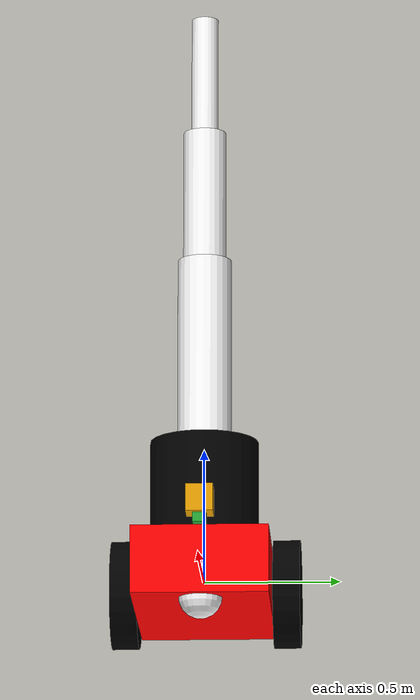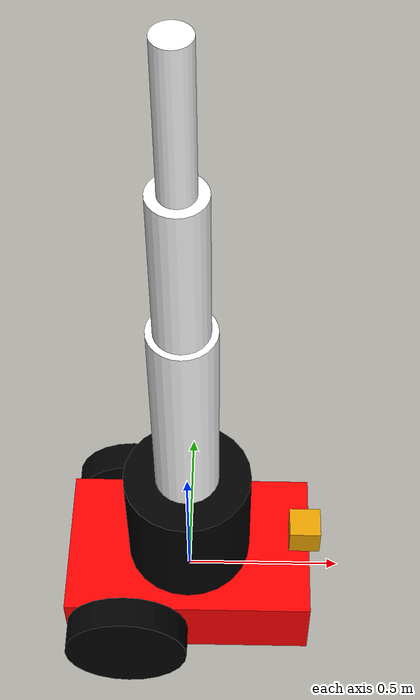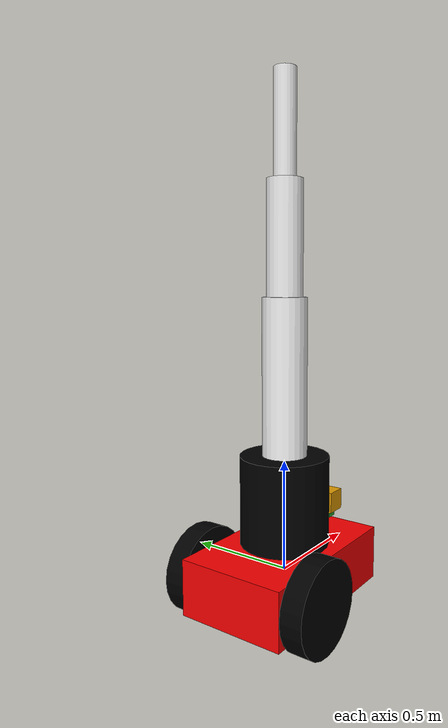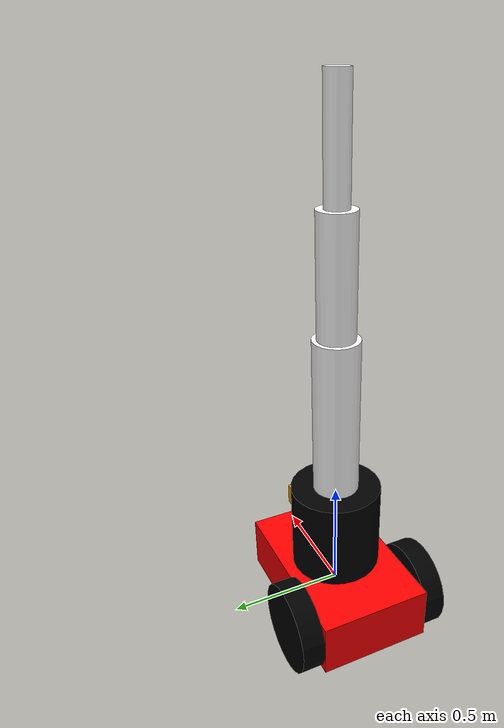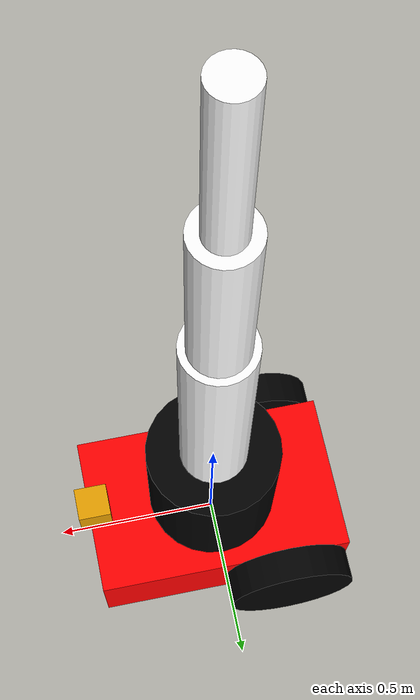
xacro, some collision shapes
<?xml version='1.0'?>
<robot name="rrbot" xmlns:xacro="http://www.ros.org/wiki/xacro">
<xacro:property name="cameraSize" value="0.05"/>
<xacro:property name="cameraMass" value="0.1"/>

  <xacro:macro name="default_inertial" params="z_value i_value mass">
    <inertial>
      <origin xyz="0 0 ${z_value}" rpy="0 0 0"/>
      <mass value="${mass}" />
      <inertia ixx="${i_value}" ixy="0.0" ixz="0.0"
               iyy="${i_value}" iyz="0.0"
               izz="${i_value}" />
      </inertial>
  </xacro:macro>

	<!-- Base Link -->

	<!-- Base Link -->
  <link name="base_link">
	<visual>
   	<material name="Red">
      <color rgba="1 0 0 1"/>
    </material>
      <origin xyz="0 0 0" rpy="0 0 0" />
      <geometry>
          <box size="0.8 0.5 0.25"/>
      </geometry>
    </visual>

    <!--Base link collision mass and inertia -->

    <collision>
      <origin xyz="0 0 0" rpy="0 0 0" />
      <geometry>
          <box size="0.8 0.5 0.25"/>
      </geometry>
    </collision>
    <inertial>
      <mass value="10"/>
      <inertia ixx="0.26" ixy="0.0" ixz="0.0" iyy="0.58" iyz="0.0" izz="0.74"/>

    </inertial>

	<!-- Caster -->

    <visual name="caster">
   	<material name="White">
      <color rgba="1 1 1 1"/>
    </material>
      <origin xyz="0.30 0 -0.120" rpy="0 0 0" />
      <geometry>
        <sphere radius="0.08" />
      </geometry>
      <surface>
        <friction>
          <ode>
            <mu>0</mu>
            <mu2>0</mu2>
            <slip1>1.0</slip1>
            <slip2>1.0</slip2>
          </ode>
        </friction>
      </surface>
    </visual>

    <!--Caster collision mass and inertia -->

    <collision>
      <origin xyz="0.30 0 -0.120" rpy="0 0 0" />
      <geometry>
        <sphere radius="0.1" />
      </geometry>
    </collision>
   </link>

    <!-- Base -->
  <joint name="joint_base1" type="revolute">
    <parent link="base_link"/>
    <child link="base1"/>
    <origin xyz="0 0 0.03" rpy="0 0 0" />
  <dynamics damping="0.7"/>
  <limit effort="1000" velocity="0.5" lower="-3.14" upper="3.14" />
    <axis xyz="0 0 1" />
  </joint>

  <link name="base1">
    <visual>
    <material name="Black">
      <color rgba="0 0 0 1"/>
    </material>
    <origin xyz="0 0 0.30" rpy="0 0 0" />
      <geometry>

          <cylinder radius="0.2" length= "0.4" />
      </geometry>
    </visual>

  <!--Neck collision,mass and inertia-->

    <collision>
      <origin xyz="0 0 0" rpy="0 0 0" />
      <geometry>
          <cylinder radius="0.2" length= "0.4" />
      </geometry>
    </collision>
    <inertial>
    <mass value="0.5"/>
      <inertia ixx="0.011" ixy="0.0" ixz="0.0" iyy="0.011" iyz="0.0" izz="0.01"/>
    </inertial>

  </link>

  <!--joint type of Neck-->

    <!-- Mid -->
  <joint name="joint_base_mid" type="revolute">
    <parent link="base1"/>
    <child link="mid"/>
    <origin xyz="0 0 0.40" rpy="0 0 0"/>
    <axis xyz="0 1 0"/>
    <dynamics damping="0.7"/>
    <limit effort="100" velocity="0.5" lower="-3.14" upper="3.14" />
  </joint>

  <link name="mid">
    <visual>
    <material name="White">
      <color rgba="1 1 1 1"/>
    </material>
    <origin rpy="0 0 0 " xyz="0 0 0.40"/>
      <geometry>
          <cylinder radius="0.1" length= "0.8" />
      </geometry>
    </visual>

  <!--Neck collision,mass and inertia-->

    <collision>
      <origin xyz="0 0 0" rpy="0 0 0.26" />
      <geometry>
         <cylinder radius="0.1" length= "0.8" />
      </geometry>
    </collision>
    <inertial>
    <mass value="0.5"/>
      <inertia ixx="0.27" ixy="0.0" ixz="0.0" iyy="0.27" iyz="0.0" izz="0.002"/>
    </inertial>

  </link>

  <!--joint type of Neck-->

    <!-- Top -->
  <joint name="joint_mid_top" type="revolute">
    <parent link="mid"/>
    <child link="top"/>
    <origin xyz="0 0 0.8" rpy="0 0 0"/>
    <axis xyz="0 1 0"/>
    <dynamics damping="0.7"/>
    <limit effort="100" velocity="0.5" lower="-3.14" upper="3.14" />
  </joint>

  <link name="top">
    <visual>
    <material name="White">
      <color rgba="1 1 1 1"/>
    </material>
    <origin rpy="0 0 0 " xyz="0 0 0.2"/>
      <geometry>
          <cylinder radius="0.08" length= "0.6" />
      </geometry>
    </visual>

  <!--Neck collision,mass and inertia-->

    <collision>
      <origin xyz="0 0 0" rpy="0 0 0.2" />
      <geometry>
         <cylinder radius="0.08" length= "0.6" />
      </geometry>
    </collision>
    <inertial>
    <mass value="0.5"/>
      <inertia ixx="0.015" ixy="0.0" ixz="0.0" iyy="0.015" iyz="0.0" izz="0.0016"/>
    </inertial>

  </link>

   <!-- last -->
  <joint name="joint_top_last" type="revolute">
    <parent link="top"/>
    <child link="last"/>
    <origin xyz="0 0 0.5" rpy="0 0 0"/>
    <axis xyz="0 1 0"/>
    <dynamics damping="0.7"/>
    <limit effort="100" velocity="0.5" lower="-3.14" upper="3.14" />
  </joint>

  <link name="last">
    <visual>
    <material name="White">
      <color rgba="1 1 1 1"/>
    </material>
    <origin rpy="0 0 0 " xyz="0 0 0.2"/>
      <geometry>
          <cylinder radius="0.05" length= "0.5" />
      </geometry>
    </visual>

    <collision>
      <origin xyz="0 0 0" rpy="0 0 0.2" />
      <geometry>
         <cylinder radius="0.05" length= "0.5" />
      </geometry>
    </collision>
    <inertial>
    <mass value="0.5"/>
      <inertia ixx="0.01" ixy="0.0" ixz="0.0" iyy="0.01" iyz="0.0" izz="0.0006"/>
    </inertial>

  </link>

	<!-- Right Wheel -->

    <link name="right_wheel">
    <visual>
   	<material name="Black">
      <color rgba="0 0 0 1"/>
    </material>
      <origin xyz="0 0 0" rpy="1.570795 0 0" />
      <geometry>
          <cylinder length="0.1" radius="0.2" />
      </geometry>
    </visual>
	<!--Right wheel collision mass and inertia -->

    <collision>
      <origin xyz="0 0 0" rpy="1.570795 0 0" />
      <geometry>
          <cylinder length="0.1" radius="0.2" />
      </geometry>
    </collision>
    <inertial>
      <mass value="8"/>
      <inertia ixx="0.086" ixy="0.0" ixz="0.0" iyy="0.086" iyz="0.0" izz="0.16"/>
    </inertial>
  </link>
  <!--joint type of Right Wheel-->

  <joint name="joint_right_wheel" type="continuous">
    <parent link="base_link"/>
    <child link="right_wheel"/>
    <origin xyz="-0.2 -0.30 0" rpy="0 0 0" />
    <axis xyz="0 1 0" />
    <joint_properties damping="0.0" friction="0.0"/>
    <limit effort="100" velocity="100"/>
  </joint>

	<!-- Left Wheel -->

  <link name="left_wheel">
    <visual>
   	<material name="Black">
      <color rgba="0 0 0 1"/>
    </material>
      <origin xyz="0 0 0" rpy="1.570795 0 0" />
      <geometry>
          <cylinder length="0.1" radius="0.2" />
      </geometry>
    </visual>

	<!--Right wheel collision mass and inertia -->

    <collision>
      <origin xyz="0 0 0" rpy="1.570795 0 0" />
      <geometry>
          <cylinder length="0.1" radius="0.2" />
      </geometry>
    </collision>
    <inertial>
      <mass value="8"/>
      <inertia ixx="0.086" ixy="0.0" ixz="0.0" iyy="0.086" iyz="0.0" izz="0.16"/>
    </inertial>

	<!--joint type of Left Wheel-->

  </link>
  <joint name="joint_left_wheel" type="continuous">
    <parent link="base_link"/>
    <child link="left_wheel"/>
    <origin xyz="-0.20 0.30 0" rpy="0 0 0" />
    <axis xyz="0 1 0" />
    <limit effort="100" velocity="100"/>
    <joint_properties damping="0.0" friction="0.0"/>
  </joint>

  <gazebo>
    <plugin name="differential_drive_controller" filename="libgazebo_ros_diff_drive.so">
      <legacyMode>false</legacyMode>
      <alwaysOn>true</alwaysOn>
      <updateRate>20</updateRate>
      <leftJoint>joint_left_wheel</leftJoint>
      <rightJoint>joint_right_wheel</rightJoint>
      <wheelSeparation>0.4</wheelSeparation>
      <wheelDiameter>0.1</wheelDiameter>
      <torque>20</torque>
      <commandTopic>cmd_vel</commandTopic>
      <odometryTopic>odom</odometryTopic>
      <odometryFrame>odom</odometryFrame>
      <robotBaseFrame>base_link</robotBaseFrame>
    </plugin>
  </gazebo>

  <link name="camera">
    <collision>
      <origin xyz="0 0 0" rpy="0 0 0"/>
      <geometry>
        <box size="${cameraSize} ${cameraSize} ${cameraSize}"/>
      </geometry>
    </collision>

    <visual>
      <origin xyz="0 0 0" rpy="0 0 0"/>
      <geometry>
        <box size="${cameraSize} ${cameraSize} ${cameraSize}"/>
      </geometry>
      <material name="green"/>
    </visual>

    <inertial>
      <mass value="${cameraMass}" />
      <origin xyz="0 0 0" rpy="0 0 0"/>
      <box_inertia m="${cameraMass}" x="${cameraSize}" y="${cameraSize}" z="${cameraSize}" />
      <inertia ixx="1e-6" ixy="0" ixz="0" iyy="1e-6" iyz="0" izz="1e-6" />
    </inertial>
  </link>

  <joint name="camera_joint" type="fixed">
    <axis xyz="0 1 0" />
    <origin xyz=".38 0 0.16" rpy="0 0 0"/>
    <parent link="base_link"/>
    <child link="camera"/>
  </joint>

  <gazebo reference="camera">
    <material>Gazebo/Green</material>
    <sensor type="camera" name="camera1">
      <update_rate>30.0</update_rate>
      <camera name="head">
        <horizontal_fov>1.3962634</horizontal_fov>
        <image>
          <width>800</width>
          <height>800</height>
          <format>R8G8B8</format>
        </image>
        <clip>
          <near>0.02</near>
          <far>300</far>
        </clip>
      </camera>
      <plugin name="camera_controller" filename="libgazebo_ros_camera.so">
        <alwaysOn>true</alwaysOn>
        <updateRate>0.0</updateRate>
        <cameraName>rrbot/camera1</cameraName>
        <imageTopicName>image_raw</imageTopicName>
        <cameraInfoTopicName>camera_info</cameraInfoTopicName>
        <frameName>camera</frameName>
        <hackBaseline>0.07</hackBaseline>
        <distortionK1>0.0</distortionK1>
        <distortionK2>0.0</distortionK2>
        <distortionK3>0.0</distortionK3>
        <distortionT1>0.0</distortionT1>
        <distortionT2>0.0</distortionT2>
      </plugin>
    </sensor>
  </gazebo>

<!-- Hokuyo -->
  <joint name="hokuyo_joint" type="fixed">
    <axis xyz="0 1 0" />
    <origin xyz="0 0 .06" rpy="0 0 0"/>
    <parent link="camera"/>
    <child link="hokuyo"/>
  </joint>

  <link name="hokuyo">
    <collision>
      <origin xyz="0 0 0" rpy="0 0 0"/>
      <geometry>
    <box size="0.1 0.1 0.1"/>
      </geometry>
    </collision>

    <visual>
      <origin xyz="0 0 0" rpy="0 0 0"/>
      <geometry>
        <mesh filename="package://ros_robotics/meshes/hokuyo.dae"/>
      </geometry>
    </visual>

    <inertial>
      <mass value="1e-5" />
      <origin xyz="0 0 0" rpy="0 0 0"/>
      <inertia ixx="1e-6" ixy="0" ixz="0" iyy="1e-6" iyz="0" izz="1e-6" />
    </inertial>
  </link>

  <!-- hokuyo -->
  <gazebo reference="hokuyo">
    <sensor type="ray" name="head_hokuyo_sensor">
      <pose>0 0 0 0 0 0</pose>
      <visualize>true</visualize>
      <update_rate>40</update_rate>
      <ray>
        <scan>
          <horizontal>
            <samples>720</samples>
            <resolution>1</resolution>
            <min_angle>-1.570796</min_angle>
            <max_angle>1.570796</max_angle>
          </horizontal>
        </scan>
        <range>
          <min>0.10</min>
          <max>30.0</max>
          <resolution>0.01</resolution>
        </range>
        <noise>
          <type>gaussian</type> -->
     <mean>0.0</mean>
          <stddev>0.01</stddev>
        </noise>
      </ray>
      <plugin name="gazebo_ros_head_hokuyo_controller" filename="libgazebo_ros_laser.so">
        <topicName>/rrbot/laser/scan</topicName>
        <frameName>hokuyo</frameName>
      </plugin>
    </sensor>
  </gazebo>

    <transmission name="transmission1">
    <type>transmission_interface/SimpleTransmission</type>
    <joint name="joint_base1">
      <hardwareInterface>EffortJointInterface</hardwareInterface>
    </joint>
    <actuator name="motor1">
      <hardwareInterface>EffortJointInterface</hardwareInterface>
      <mechanicalReduction>1</mechanicalReduction>
    </actuator>
  </transmission>

 <transmission name="transmission2">
    <type>transmission_interface/SimpleTransmission</type>
    <joint name="joint_base_mid">
      <hardwareInterface>EffortJointInterface</hardwareInterface>
    </joint>
    <actuator name="motor2">
      <hardwareInterface>EffortJointInterface</hardwareInterface>
      <mechanicalReduction>1</mechanicalReduction>
    </actuator>
  </transmission>

 <transmission name="transmission3">
    <type>transmission_interface/SimpleTransmission</type>
    <joint name="joint_mid_top">
      <hardwareInterface>EffortJointInterface</hardwareInterface>
    </joint>
    <actuator name="motor3">
      <hardwareInterface>EffortJointInterface</hardwareInterface>
      <mechanicalReduction>1</mechanicalReduction>
    </actuator>
  </transmission>
 <transmission name="transmission4">
    <type>transmission_interface/SimpleTransmission</type>
    <joint name="joint_top_last">
      <hardwareInterface>EffortJointInterface</hardwareInterface>
    </joint>
    <actuator name="motor4">
      <hardwareInterface>EffortJointInterface</hardwareInterface>
      <mechanicalReduction>1</mechanicalReduction>
    </actuator>
  </transmission>

<!--Gazebo References-->

  <gazebo>
    <plugin name="gazebo_ros_control" filename="libgazebo_ros_control.so">
      <robotNamespace>/rrbot</robotNamespace>
      <robotSimType>gazebo_ros_control/DefaultRobotHWSim</robotSimType>
    </plugin>
  </gazebo>

<gazebo reference="base_link">
  <material>Gazebo/Red</material>
</gazebo>
<gazebo reference="right_wheel">
  <material>Gazebo/Black</material>
</gazebo>
  <gazebo reference="left_wheel">
<material>Gazebo/Black</material>
</gazebo>

<gazebo reference="base1">
  <material>Gazebo/Black</material>
</gazebo>

  <gazebo reference="mid">
<material>Gazebo/White</material>
</gazebo>

 <gazebo reference="top">
<material>Gazebo/White</material>
</gazebo>

 <gazebo reference="last">
<material>Gazebo/White</material>
</gazebo>

</robot>
